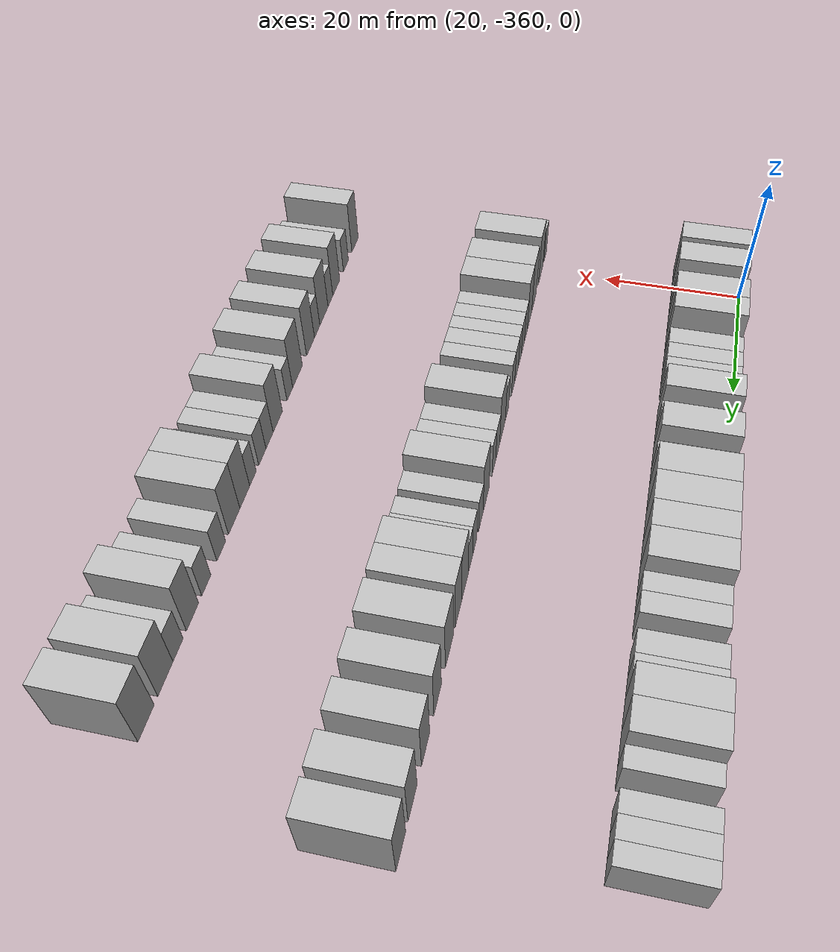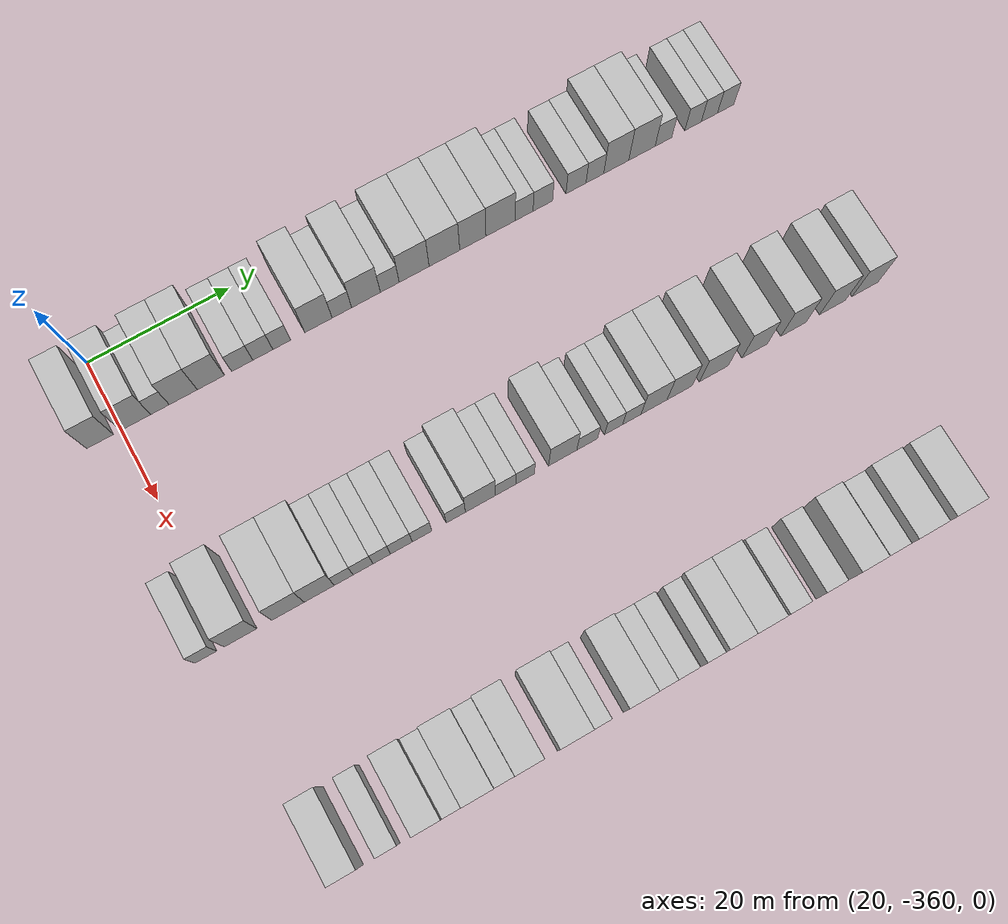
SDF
<sdf version="1.6">
 <world name="default">
  <model name="building_25">
   <static>1</static>
   <pose>25.0000 -362.9163 0 0.000000 0.000000 0.000000</pose>
   <link name="link">
    <pose>0 0 4.50 0 0 0</pose>
    <collision name="collision"><geometry><box><size>10.0000 3.6502 9.0000</size></box></geometry></collision>
    <visual name="visual">
     <cast_shadows>0</cast_shadows>
     <geometry><box><size>10.0000 3.6502 9.0000</size></box></geometry>
     <material>
      <script>
       <uri>model://HANNAS_wall/materials/scripts</uri>
       <uri>model://HANNAS_wall/materials/textures</uri>
       <name>vrc/HANNAS_wall</name>
      </script>
     </material>
    </visual>
   </link>
  </model>
  <model name="building_26">
   <static>1</static>
   <pose>25.0000 -358.0158 0 0.000000 0.000000 0.000000</pose>
   <link name="link">
    <pose>0 0 4.50 0 0 0</pose>
    <collision name="collision"><geometry><box><size>10.0000 4.1508 9.0000</size></box></geometry></collision>
    <visual name="visual">
     <cast_shadows>0</cast_shadows>
     <geometry><box><size>10.0000 4.1508 9.0000</size></box></geometry>
     <material>
      <script>
       <uri>model://HANNAS_wall/materials/scripts</uri>
       <uri>model://HANNAS_wall/materials/textures</uri>
       <name>vrc/HANNAS_wall</name>
      </script>
     </material>
    </visual>
   </link>
  </model>
  <model name="building_27">
   <static>1</static>
   <pose>25.0000 -354.6741 0 0.000000 0.000000 0.000000</pose>
   <link name="link">
    <pose>0 0 3.00 0 0 0</pose>
    <collision name="collision"><geometry><box><size>10.0000 2.5326 6.0000</size></box></geometry></collision>
    <visual name="visual">
     <cast_shadows>0</cast_shadows>
     <geometry><box><size>10.0000 2.5326 6.0000</size></box></geometry>
     <material>
      <script>
       <uri>model://HANNAS_wall/materials/scripts</uri>
       <uri>model://HANNAS_wall/materials/textures</uri>
       <name>vrc/HANNAS_wall</name>
      </script>
     </material>
    </visual>
   </link>
  </model>
  <model name="building_28">
   <static>1</static>
   <pose>25.0000 -351.4615 0 0.000000 0.000000 0.000000</pose>
   <link name="link">
    <pose>0 0 4.50 0 0 0</pose>
    <collision name="collision"><geometry><box><size>10.0000 3.8926 9.0000</size></box></geometry></collision>
    <visual name="visual">
     <cast_shadows>0</cast_shadows>
     <geometry><box><size>10.0000 3.8926 9.0000</size></box></geometry>
     <material>
      <script>
       <uri>model://HANNAS_wall/materials/scripts</uri>
       <uri>model://HANNAS_wall/materials/textures</uri>
       <name>vrc/HANNAS_wall</name>
      </script>
     </material>
    </visual>
   </link>
  </model>
  <model name="building_29">
   <static>1</static>
   <pose>25.0000 -347.6250 0 0.000000 0.000000 0.000000</pose>
   <link name="link">
    <pose>0 0 4.50 0 0 0</pose>
    <collision name="collision"><geometry><box><size>10.0000 3.7804 9.0000</size></box></geometry></collision>
    <visual name="visual">
     <cast_shadows>0</cast_shadows>
     <geometry><box><size>10.0000 3.7804 9.0000</size></box></geometry>
     <material>
      <script>
       <uri>model://HANNAS_wall/materials/scripts</uri>
       <uri>model://HANNAS_wall/materials/textures</uri>
       <name>vrc/HANNAS_wall</name>
      </script>
     </material>
    </visual>
   </link>
  </model>
  <model name="building_30">
   <static>1</static>
   <pose>25.0000 -343.2456 0 0.000000 0.000000 0.000000</pose>
   <link name="link">
    <pose>0 0 3.00 0 0 0</pose>
    <collision name="collision"><geometry><box><size>10.0000 2.9784 6.0000</size></box></geometry></collision>
    <visual name="visual">
     <cast_shadows>0</cast_shadows>
     <geometry><box><size>10.0000 2.9784 6.0000</size></box></geometry>
     <material>
      <script>
       <uri>model://HANNAS_wall/materials/scripts</uri>
       <uri>model://HANNAS_wall/materials/textures</uri>
       <name>vrc/HANNAS_wall</name>
      </script>
     </material>
    </visual>
   </link>
  </model>
  <model name="building_31">
   <static>1</static>
   <pose>25.0000 -340.3526 0 0.000000 0.000000 0.000000</pose>
   <link name="link">
    <pose>0 0 3.00 0 0 0</pose>
    <collision name="collision"><geometry><box><size>10.0000 2.8076 6.0000</size></box></geometry></collision>
    <visual name="visual">
     <cast_shadows>0</cast_shadows>
     <geometry><box><size>10.0000 2.8076 6.0000</size></box></geometry>
     <material>
      <script>
       <uri>model://HANNAS_wall/materials/scripts</uri>
       <uri>model://HANNAS_wall/materials/textures</uri>
       <name>vrc/HANNAS_wall</name>
      </script>
     </material>
    </visual>
   </link>
  </model>
  <model name="building_32">
   <static>1</static>
   <pose>25.0000 -337.6919 0 0.000000 0.000000 0.000000</pose>
   <link name="link">
    <pose>0 0 3.00 0 0 0</pose>
    <collision name="collision"><geometry><box><size>10.0000 2.5138 6.0000</size></box></geometry></collision>
    <visual name="visual">
     <cast_shadows>0</cast_shadows>
     <geometry><box><size>10.0000 2.5138 6.0000</size></box></geometry>
     <material>
      <script>
       <uri>model://HANNAS_wall/materials/scripts</uri>
       <uri>model://HANNAS_wall/materials/textures</uri>
       <name>vrc/HANNAS_wall</name>
      </script>
     </material>
    </visual>
   </link>
  </model>
  <model name="building_33">
   <static>1</static>
   <pose>25.0000 -332.4795 0 0.000000 0.000000 0.000000</pose>
   <link name="link">
    <pose>0 0 4.50 0 0 0</pose>
    <collision name="collision"><geometry><box><size>10.0000 3.9111 9.0000</size></box></geometry></collision>
    <visual name="visual">
     <cast_shadows>0</cast_shadows>
     <geometry><box><size>10.0000 3.9111 9.0000</size></box></geometry>
     <material>
      <script>
       <uri>model://HANNAS_wall/materials/scripts</uri>
       <uri>model://HANNAS_wall/materials/textures</uri>
       <name>vrc/HANNAS_wall</name>
      </script>
     </material>
    </visual>
   </link>
  </model>
  <model name="building_34">
   <static>1</static>
   <pose>25.0000 -329.1328 0 0.000000 0.000000 0.000000</pose>
   <link name="link">
    <pose>0 0 3.00 0 0 0</pose>
    <collision name="collision"><geometry><box><size>10.0000 2.7823 6.0000</size></box></geometry></collision>
    <visual name="visual">
     <cast_shadows>0</cast_shadows>
     <geometry><box><size>10.0000 2.7823 6.0000</size></box></geometry>
     <material>
      <script>
       <uri>model://HANNAS_wall/materials/scripts</uri>
       <uri>model://HANNAS_wall/materials/textures</uri>
       <name>vrc/HANNAS_wall</name>
      </script>
     </material>
    </visual>
   </link>
  </model>
  <model name="building_35">
   <static>1</static>
   <pose>25.0000 -325.6874 0 0.000000 0.000000 0.000000</pose>
   <link name="link">
    <pose>0 0 4.50 0 0 0</pose>
    <collision name="collision"><geometry><box><size>10.0000 4.1084 9.0000</size></box></geometry></collision>
    <visual name="visual">
     <cast_shadows>0</cast_shadows>
     <geometry><box><size>10.0000 4.1084 9.0000</size></box></geometry>
     <material>
      <script>
       <uri>model://HANNAS_wall/materials/scripts</uri>
       <uri>model://HANNAS_wall/materials/textures</uri>
       <name>vrc/HANNAS_wall</name>
      </script>
     </material>
    </visual>
   </link>
  </model>
  <model name="building_36">
   <static>1</static>
   <pose>25.0000 -322.2749 0 0.000000 0.000000 0.000000</pose>
   <link name="link">
    <pose>0 0 3.00 0 0 0</pose>
    <collision name="collision"><geometry><box><size>10.0000 2.7166 6.0000</size></box></geometry></collision>
    <visual name="visual">
     <cast_shadows>0</cast_shadows>
     <geometry><box><size>10.0000 2.7166 6.0000</size></box></geometry>
     <material>
      <script>
       <uri>model://HANNAS_wall/materials/scripts</uri>
       <uri>model://HANNAS_wall/materials/textures</uri>
       <name>vrc/HANNAS_wall</name>
      </script>
     </material>
    </visual>
   </link>
  </model>
  <model name="building_37">
   <static>1</static>
   <pose>25.0000 -318.7451 0 0.000000 0.000000 0.000000</pose>
   <link name="link">
    <pose>0 0 4.50 0 0 0</pose>
    <collision name="collision"><geometry><box><size>10.0000 4.3431 9.0000</size></box></geometry></collision>
    <visual name="visual">
     <cast_shadows>0</cast_shadows>
     <geometry><box><size>10.0000 4.3431 9.0000</size></box></geometry>
     <material>
      <script>
       <uri>model://HANNAS_wall/materials/scripts</uri>
       <uri>model://HANNAS_wall/materials/textures</uri>
       <name>vrc/HANNAS_wall</name>
      </script>
     </material>
    </visual>
   </link>
  </model>
  <model name="building_38">
   <static>1</static>
   <pose>25.0000 -314.3422 0 0.000000 0.000000 0.000000</pose>
   <link name="link">
    <pose>0 0 4.50 0 0 0</pose>
    <collision name="collision"><geometry><box><size>10.0000 4.4626 9.0000</size></box></geometry></collision>
    <visual name="visual">
     <cast_shadows>0</cast_shadows>
     <geometry><box><size>10.0000 4.4626 9.0000</size></box></geometry>
     <material>
      <script>
       <uri>model://HANNAS_wall/materials/scripts</uri>
       <uri>model://HANNAS_wall/materials/textures</uri>
       <name>vrc/HANNAS_wall</name>
      </script>
     </material>
    </visual>
   </link>
  </model>
  <model name="building_39">
   <static>1</static>
   <pose>25.0000 -310.1958 0 0.000000 0.000000 0.000000</pose>
   <link name="link">
    <pose>0 0 4.50 0 0 0</pose>
    <collision name="collision"><geometry><box><size>10.0000 3.8304 9.0000</size></box></geometry></collision>
    <visual name="visual">
     <cast_shadows>0</cast_shadows>
     <geometry><box><size>10.0000 3.8304 9.0000</size></box></geometry>
     <material>
      <script>
       <uri>model://HANNAS_wall/materials/scripts</uri>
       <uri>model://HANNAS_wall/materials/textures</uri>
       <name>vrc/HANNAS_wall</name>
      </script>
     </material>
    </visual>
   </link>
  </model>
  <model name="building_40">
   <static>1</static>
   <pose>25.0000 -306.1261 0 0.000000 0.000000 0.000000</pose>
   <link name="link">
    <pose>0 0 4.50 0 0 0</pose>
    <collision name="collision"><geometry><box><size>10.0000 4.3090 9.0000</size></box></geometry></collision>
    <visual name="visual">
     <cast_shadows>0</cast_shadows>
     <geometry><box><size>10.0000 4.3090 9.0000</size></box></geometry>
     <material>
      <script>
       <uri>model://HANNAS_wall/materials/scripts</uri>
       <uri>model://HANNAS_wall/materials/textures</uri>
       <name>vrc/HANNAS_wall</name>
      </script>
     </material>
    </visual>
   </link>
  </model>
  <model name="building_41">
   <static>1</static>
   <pose>25.0000 -302.6480 0 0.000000 0.000000 0.000000</pose>
   <link name="link">
    <pose>0 0 3.00 0 0 0</pose>
    <collision name="collision"><geometry><box><size>10.0000 2.6471 6.0000</size></box></geometry></collision>
    <visual name="visual">
     <cast_shadows>0</cast_shadows>
     <geometry><box><size>10.0000 2.6471 6.0000</size></box></geometry>
     <material>
      <script>
       <uri>model://HANNAS_wall/materials/scripts</uri>
       <uri>model://HANNAS_wall/materials/textures</uri>
       <name>vrc/HANNAS_wall</name>
      </script>
     </material>
    </visual>
   </link>
  </model>
  <model name="building_42">
   <static>1</static>
   <pose>25.0000 -299.8721 0 0.000000 0.000000 0.000000</pose>
   <link name="link">
    <pose>0 0 3.00 0 0 0</pose>
    <collision name="collision"><geometry><box><size>10.0000 2.9047 6.0000</size></box></geometry></collision>
    <visual name="visual">
     <cast_shadows>0</cast_shadows>
     <geometry><box><size>10.0000 2.9047 6.0000</size></box></geometry>
     <material>
      <script>
       <uri>model://HANNAS_wall/materials/scripts</uri>
       <uri>model://HANNAS_wall/materials/textures</uri>
       <name>vrc/HANNAS_wall</name>
      </script>
     </material>
    </visual>
   </link>
  </model>
  <model name="building_43">
   <static>1</static>
   <pose>25.0000 -294.9206 0 0.000000 0.000000 0.000000</pose>
   <link name="link">
    <pose>0 0 3.00 0 0 0</pose>
    <collision name="collision"><geometry><box><size>10.0000 2.9984 6.0000</size></box></geometry></collision>
    <visual name="visual">
     <cast_shadows>0</cast_shadows>
     <geometry><box><size>10.0000 2.9984 6.0000</size></box></geometry>
     <material>
      <script>
       <uri>model://HANNAS_wall/materials/scripts</uri>
       <uri>model://HANNAS_wall/materials/textures</uri>
       <name>vrc/HANNAS_wall</name>
      </script>
     </material>
    </visual>
   </link>
  </model>
  <model name="building_44">
   <static>1</static>
   <pose>25.0000 -292.0987 0 0.000000 0.000000 0.000000</pose>
   <link name="link">
    <pose>0 0 3.00 0 0 0</pose>
    <collision name="collision"><geometry><box><size>10.0000 2.6453 6.0000</size></box></geometry></collision>
    <visual name="visual">
     <cast_shadows>0</cast_shadows>
     <geometry><box><size>10.0000 2.6453 6.0000</size></box></geometry>
     <material>
      <script>
       <uri>model://HANNAS_wall/materials/scripts</uri>
       <uri>model://HANNAS_wall/materials/textures</uri>
       <name>vrc/HANNAS_wall</name>
      </script>
     </material>
    </visual>
   </link>
  </model>
  <model name="building_45">
   <static>1</static>
   <pose>25.0000 -288.8774 0 0.000000 0.000000 0.000000</pose>
   <link name="link">
    <pose>0 0 4.50 0 0 0</pose>
    <collision name="collision"><geometry><box><size>10.0000 3.7974 9.0000</size></box></geometry></collision>
    <visual name="visual">
     <cast_shadows>0</cast_shadows>
     <geometry><box><size>10.0000 3.7974 9.0000</size></box></geometry>
     <material>
      <script>
       <uri>model://HANNAS_wall/materials/scripts</uri>
       <uri>model://HANNAS_wall/materials/textures</uri>
       <name>vrc/HANNAS_wall</name>
      </script>
     </material>
    </visual>
   </link>
  </model>
  <model name="building_46">
   <static>1</static>
   <pose>25.0000 -284.9828 0 0.000000 0.000000 0.000000</pose>
   <link name="link">
    <pose>0 0 4.50 0 0 0</pose>
    <collision name="collision"><geometry><box><size>10.0000 3.9919 9.0000</size></box></geometry></collision>
    <visual name="visual">
     <cast_shadows>0</cast_shadows>
     <geometry><box><size>10.0000 3.9919 9.0000</size></box></geometry>
     <material>
      <script>
       <uri>model://HANNAS_wall/materials/scripts</uri>
       <uri>model://HANNAS_wall/materials/textures</uri>
       <name>vrc/HANNAS_wall</name>
      </script>
     </material>
    </visual>
   </link>
  </model>
  <model name="building_47">
   <static>1</static>
   <pose>25.0000 -281.7192 0 0.000000 0.000000 0.000000</pose>
   <link name="link">
    <pose>0 0 3.00 0 0 0</pose>
    <collision name="collision"><geometry><box><size>10.0000 2.5353 6.0000</size></box></geometry></collision>
    <visual name="visual">
     <cast_shadows>0</cast_shadows>
     <geometry><box><size>10.0000 2.5353 6.0000</size></box></geometry>
     <material>
      <script>
       <uri>model://HANNAS_wall/materials/scripts</uri>
       <uri>model://HANNAS_wall/materials/textures</uri>
       <name>vrc/HANNAS_wall</name>
      </script>
     </material>
    </visual>
   </link>
  </model>
  <model name="building_48">
   <static>1</static>
   <pose>25.0000 -277.1968 0 0.000000 0.000000 0.000000</pose>
   <link name="link">
    <pose>0 0 3.00 0 0 0</pose>
    <collision name="collision"><geometry><box><size>10.0000 2.5094 6.0000</size></box></geometry></collision>
    <visual name="visual">
     <cast_shadows>0</cast_shadows>
     <geometry><box><size>10.0000 2.5094 6.0000</size></box></geometry>
     <material>
      <script>
       <uri>model://HANNAS_wall/materials/scripts</uri>
       <uri>model://HANNAS_wall/materials/textures</uri>
       <name>vrc/HANNAS_wall</name>
      </script>
     </material>
    </visual>
   </link>
  </model>
  <model name="building_49">
   <static>1</static>
   <pose>25.0000 -274.6960 0 0.000000 0.000000 0.000000</pose>
   <link name="link">
    <pose>0 0 3.00 0 0 0</pose>
    <collision name="collision"><geometry><box><size>10.0000 2.4923 6.0000</size></box></geometry></collision>
    <visual name="visual">
     <cast_shadows>0</cast_shadows>
     <geometry><box><size>10.0000 2.4923 6.0000</size></box></geometry>
     <material>
      <script>
       <uri>model://HANNAS_wall/materials/scripts</uri>
       <uri>model://HANNAS_wall/materials/textures</uri>
       <name>vrc/HANNAS_wall</name>
      </script>
     </material>
    </visual>
   </link>
  </model>
  <model name="building_50">
   <static>1</static>
   <pose>25.0000 -272.1883 0 0.000000 0.000000 0.000000</pose>
   <link name="link">
    <pose>0 0 3.00 0 0 0</pose>
    <collision name="collision"><geometry><box><size>10.0000 2.5231 6.0000</size></box></geometry></collision>
    <visual name="visual">
     <cast_shadows>0</cast_shadows>
     <geometry><box><size>10.0000 2.5231 6.0000</size></box></geometry>
     <material>
      <script>
       <uri>model://HANNAS_wall/materials/scripts</uri>
       <uri>model://HANNAS_wall/materials/textures</uri>
       <name>vrc/HANNAS_wall</name>
      </script>
     </material>
    </visual>
   </link>
  </model>
  <model name="building_254">
   <static>1</static>
   <pose>55.0000 -363.3795 0 0.000000 0.000000 0.000000</pose>
   <link name="link">
    <pose>0 0 3.00 0 0 0</pose>
    <collision name="collision"><geometry><box><size>10.0000 2.8930 6.0000</size></box></geometry></collision>
    <visual name="visual">
     <cast_shadows>0</cast_shadows>
     <geometry><box><size>10.0000 2.8930 6.0000</size></box></geometry>
     <material>
      <script>
       <uri>model://HANNAS_wall/materials/scripts</uri>
       <uri>model://HANNAS_wall/materials/textures</uri>
       <name>vrc/HANNAS_wall</name>
      </script>
     </material>
    </visual>
   </link>
  </model>
  <model name="building_255">
   <static>1</static>
   <pose>55.0000 -358.7489 0 0.000000 0.000000 0.000000</pose>
   <link name="link">
    <pose>0 0 4.50 0 0 0</pose>
    <collision name="collision"><geometry><box><size>10.0000 4.3682 9.0000</size></box></geometry></collision>
    <visual name="visual">
     <cast_shadows>0</cast_shadows>
     <geometry><box><size>10.0000 4.3682 9.0000</size></box></geometry>
     <material>
      <script>
       <uri>model://HANNAS_wall/materials/scripts</uri>
       <uri>model://HANNAS_wall/materials/textures</uri>
       <name>vrc/HANNAS_wall</name>
      </script>
     </material>
    </visual>
   </link>
  </model>
  <model name="building_256">
   <static>1</static>
   <pose>55.0000 -352.3789 0 0.000000 0.000000 0.000000</pose>
   <link name="link">
    <pose>0 0 4.50 0 0 0</pose>
    <collision name="collision"><geometry><box><size>10.0000 4.3719 9.0000</size></box></geometry></collision>
    <visual name="visual">
     <cast_shadows>0</cast_shadows>
     <geometry><box><size>10.0000 4.3719 9.0000</size></box></geometry>
     <material>
      <script>
       <uri>model://HANNAS_wall/materials/scripts</uri>
       <uri>model://HANNAS_wall/materials/textures</uri>
       <name>vrc/HANNAS_wall</name>
      </script>
     </material>
    </visual>
   </link>
  </model>
  <model name="building_257">
   <static>1</static>
   <pose>55.0000 -348.1459 0 0.000000 0.000000 0.000000</pose>
   <link name="link">
    <pose>0 0 4.50 0 0 0</pose>
    <collision name="collision"><geometry><box><size>10.0000 4.0941 9.0000</size></box></geometry></collision>
    <visual name="visual">
     <cast_shadows>0</cast_shadows>
     <geometry><box><size>10.0000 4.0941 9.0000</size></box></geometry>
     <material>
      <script>
       <uri>model://HANNAS_wall/materials/scripts</uri>
       <uri>model://HANNAS_wall/materials/textures</uri>
       <name>vrc/HANNAS_wall</name>
      </script>
     </material>
    </visual>
   </link>
  </model>
  <model name="building_258">
   <static>1</static>
   <pose>55.0000 -344.8198 0 0.000000 0.000000 0.000000</pose>
   <link name="link">
    <pose>0 0 3.00 0 0 0</pose>
    <collision name="collision"><geometry><box><size>10.0000 2.5580 6.0000</size></box></geometry></collision>
    <visual name="visual">
     <cast_shadows>0</cast_shadows>
     <geometry><box><size>10.0000 2.5580 6.0000</size></box></geometry>
     <material>
      <script>
       <uri>model://HANNAS_wall/materials/scripts</uri>
       <uri>model://HANNAS_wall/materials/textures</uri>
       <name>vrc/HANNAS_wall</name>
      </script>
     </material>
    </visual>
   </link>
  </model>
  <model name="building_259">
   <static>1</static>
   <pose>55.0000 -342.1855 0 0.000000 0.000000 0.000000</pose>
   <link name="link">
    <pose>0 0 3.00 0 0 0</pose>
    <collision name="collision"><geometry><box><size>10.0000 2.7106 6.0000</size></box></geometry></collision>
    <visual name="visual">
     <cast_shadows>0</cast_shadows>
     <geometry><box><size>10.0000 2.7106 6.0000</size></box></geometry>
     <material>
      <script>
       <uri>model://HANNAS_wall/materials/scripts</uri>
       <uri>model://HANNAS_wall/materials/textures</uri>
       <name>vrc/HANNAS_wall</name>
      </script>
     </material>
    </visual>
   </link>
  </model>
  <model name="building_260">
   <static>1</static>
   <pose>55.0000 -339.6256 0 0.000000 0.000000 0.000000</pose>
   <link name="link">
    <pose>0 0 3.00 0 0 0</pose>
    <collision name="collision"><geometry><box><size>10.0000 2.4093 6.0000</size></box></geometry></collision>
    <visual name="visual">
     <cast_shadows>0</cast_shadows>
     <geometry><box><size>10.0000 2.4093 6.0000</size></box></geometry>
     <material>
      <script>
       <uri>model://HANNAS_wall/materials/scripts</uri>
       <uri>model://HANNAS_wall/materials/textures</uri>
       <name>vrc/HANNAS_wall</name>
      </script>
     </material>
    </visual>
   </link>
  </model>
  <model name="building_261">
   <static>1</static>
   <pose>55.0000 -336.9314 0 0.000000 0.000000 0.000000</pose>
   <link name="link">
    <pose>0 0 3.00 0 0 0</pose>
    <collision name="collision"><geometry><box><size>10.0000 2.9791 6.0000</size></box></geometry></collision>
    <visual name="visual">
     <cast_shadows>0</cast_shadows>
     <geometry><box><size>10.0000 2.9791 6.0000</size></box></geometry>
     <material>
      <script>
       <uri>model://HANNAS_wall/materials/scripts</uri>
       <uri>model://HANNAS_wall/materials/textures</uri>
       <name>vrc/HANNAS_wall</name>
      </script>
     </material>
    </visual>
   </link>
  </model>
  <model name="building_262">
   <static>1</static>
   <pose>55.0000 -334.0893 0 0.000000 0.000000 0.000000</pose>
   <link name="link">
    <pose>0 0 3.00 0 0 0</pose>
    <collision name="collision"><geometry><box><size>10.0000 2.7050 6.0000</size></box></geometry></collision>
    <visual name="visual">
     <cast_shadows>0</cast_shadows>
     <geometry><box><size>10.0000 2.7050 6.0000</size></box></geometry>
     <material>
      <script>
       <uri>model://HANNAS_wall/materials/scripts</uri>
       <uri>model://HANNAS_wall/materials/textures</uri>
       <name>vrc/HANNAS_wall</name>
      </script>
     </material>
    </visual>
   </link>
  </model>
  <model name="building_263">
   <static>1</static>
   <pose>55.0000 -329.4007 0 0.000000 0.000000 0.000000</pose>
   <link name="link">
    <pose>0 0 3.00 0 0 0</pose>
    <collision name="collision"><geometry><box><size>10.0000 2.6723 6.0000</size></box></geometry></collision>
    <visual name="visual">
     <cast_shadows>0</cast_shadows>
     <geometry><box><size>10.0000 2.6723 6.0000</size></box></geometry>
     <material>
      <script>
       <uri>model://HANNAS_wall/materials/scripts</uri>
       <uri>model://HANNAS_wall/materials/textures</uri>
       <name>vrc/HANNAS_wall</name>
      </script>
     </material>
    </visual>
   </link>
  </model>
  <model name="building_264">
   <static>1</static>
   <pose>55.0000 -325.9668 0 0.000000 0.000000 0.000000</pose>
   <link name="link">
    <pose>0 0 4.50 0 0 0</pose>
    <collision name="collision"><geometry><box><size>10.0000 4.1955 9.0000</size></box></geometry></collision>
    <visual name="visual">
     <cast_shadows>0</cast_shadows>
     <geometry><box><size>10.0000 4.1955 9.0000</size></box></geometry>
     <material>
      <script>
       <uri>model://HANNAS_wall/materials/scripts</uri>
       <uri>model://HANNAS_wall/materials/textures</uri>
       <name>vrc/HANNAS_wall</name>
      </script>
     </material>
    </visual>
   </link>
  </model>
  <model name="building_265">
   <static>1</static>
   <pose>55.0000 -322.4486 0 0.000000 0.000000 0.000000</pose>
   <link name="link">
    <pose>0 0 3.00 0 0 0</pose>
    <collision name="collision"><geometry><box><size>10.0000 2.8410 6.0000</size></box></geometry></collision>
    <visual name="visual">
     <cast_shadows>0</cast_shadows>
     <geometry><box><size>10.0000 2.8410 6.0000</size></box></geometry>
     <material>
      <script>
       <uri>model://HANNAS_wall/materials/scripts</uri>
       <uri>model://HANNAS_wall/materials/textures</uri>
       <name>vrc/HANNAS_wall</name>
      </script>
     </material>
    </visual>
   </link>
  </model>
  <model name="building_266">
   <static>1</static>
   <pose>55.0000 -319.7094 0 0.000000 0.000000 0.000000</pose>
   <link name="link">
    <pose>0 0 3.00 0 0 0</pose>
    <collision name="collision"><geometry><box><size>10.0000 2.6372 6.0000</size></box></geometry></collision>
    <visual name="visual">
     <cast_shadows>0</cast_shadows>
     <geometry><box><size>10.0000 2.6372 6.0000</size></box></geometry>
     <material>
      <script>
       <uri>model://HANNAS_wall/materials/scripts</uri>
       <uri>model://HANNAS_wall/materials/textures</uri>
       <name>vrc/HANNAS_wall</name>
      </script>
     </material>
    </visual>
   </link>
  </model>
  <model name="building_267">
   <static>1</static>
   <pose>55.0000 -314.3825 0 0.000000 0.000000 0.000000</pose>
   <link name="link">
    <pose>0 0 4.50 0 0 0</pose>
    <collision name="collision"><geometry><box><size>10.0000 4.0167 9.0000</size></box></geometry></collision>
    <visual name="visual">
     <cast_shadows>0</cast_shadows>
     <geometry><box><size>10.0000 4.0167 9.0000</size></box></geometry>
     <material>
      <script>
       <uri>model://HANNAS_wall/materials/scripts</uri>
       <uri>model://HANNAS_wall/materials/textures</uri>
       <name>vrc/HANNAS_wall</name>
      </script>
     </material>
    </visual>
   </link>
  </model>
  <model name="building_268">
   <static>1</static>
   <pose>55.0000 -310.8898 0 0.000000 0.000000 0.000000</pose>
   <link name="link">
    <pose>0 0 3.00 0 0 0</pose>
    <collision name="collision"><geometry><box><size>10.0000 2.9686 6.0000</size></box></geometry></collision>
    <visual name="visual">
     <cast_shadows>0</cast_shadows>
     <geometry><box><size>10.0000 2.9686 6.0000</size></box></geometry>
     <material>
      <script>
       <uri>model://HANNAS_wall/materials/scripts</uri>
       <uri>model://HANNAS_wall/materials/textures</uri>
       <name>vrc/HANNAS_wall</name>
      </script>
     </material>
    </visual>
   </link>
  </model>
  <model name="building_269">
   <static>1</static>
   <pose>55.0000 -307.1043 0 0.000000 0.000000 0.000000</pose>
   <link name="link">
    <pose>0 0 3.00 0 0 0</pose>
    <collision name="collision"><geometry><box><size>10.0000 2.6023 6.0000</size></box></geometry></collision>
    <visual name="visual">
     <cast_shadows>0</cast_shadows>
     <geometry><box><size>10.0000 2.6023 6.0000</size></box></geometry>
     <material>
      <script>
       <uri>model://HANNAS_wall/materials/scripts</uri>
       <uri>model://HANNAS_wall/materials/textures</uri>
       <name>vrc/HANNAS_wall</name>
      </script>
     </material>
    </visual>
   </link>
  </model>
  <model name="building_270">
   <static>1</static>
   <pose>55.0000 -304.4788 0 0.000000 0.000000 0.000000</pose>
   <link name="link">
    <pose>0 0 3.00 0 0 0</pose>
    <collision name="collision"><geometry><box><size>10.0000 2.6488 6.0000</size></box></geometry></collision>
    <visual name="visual">
     <cast_shadows>0</cast_shadows>
     <geometry><box><size>10.0000 2.6488 6.0000</size></box></geometry>
     <material>
      <script>
       <uri>model://HANNAS_wall/materials/scripts</uri>
       <uri>model://HANNAS_wall/materials/textures</uri>
       <name>vrc/HANNAS_wall</name>
      </script>
     </material>
    </visual>
   </link>
  </model>
  <model name="building_271">
   <static>1</static>
   <pose>55.0000 -301.2688 0 0.000000 0.000000 0.000000</pose>
   <link name="link">
    <pose>0 0 4.50 0 0 0</pose>
    <collision name="collision"><geometry><box><size>10.0000 3.7713 9.0000</size></box></geometry></collision>
    <visual name="visual">
     <cast_shadows>0</cast_shadows>
     <geometry><box><size>10.0000 3.7713 9.0000</size></box></geometry>
     <material>
      <script>
       <uri>model://HANNAS_wall/materials/scripts</uri>
       <uri>model://HANNAS_wall/materials/textures</uri>
       <name>vrc/HANNAS_wall</name>
      </script>
     </material>
    </visual>
   </link>
  </model>
  <model name="building_272">
   <static>1</static>
   <pose>55.0000 -297.5257 0 0.000000 0.000000 0.000000</pose>
   <link name="link">
    <pose>0 0 4.50 0 0 0</pose>
    <collision name="collision"><geometry><box><size>10.0000 3.7149 9.0000</size></box></geometry></collision>
    <visual name="visual">
     <cast_shadows>0</cast_shadows>
     <geometry><box><size>10.0000 3.7149 9.0000</size></box></geometry>
     <material>
      <script>
       <uri>model://HANNAS_wall/materials/scripts</uri>
       <uri>model://HANNAS_wall/materials/textures</uri>
       <name>vrc/HANNAS_wall</name>
      </script>
     </material>
    </visual>
   </link>
  </model>
  <model name="building_273">
   <static>1</static>
   <pose>55.0000 -292.5268 0 0.000000 0.000000 0.000000</pose>
   <link name="link">
    <pose>0 0 4.50 0 0 0</pose>
    <collision name="collision"><geometry><box><size>10.0000 4.2829 9.0000</size></box></geometry></collision>
    <visual name="visual">
     <cast_shadows>0</cast_shadows>
     <geometry><box><size>10.0000 4.2829 9.0000</size></box></geometry>
     <material>
      <script>
       <uri>model://HANNAS_wall/materials/scripts</uri>
       <uri>model://HANNAS_wall/materials/textures</uri>
       <name>vrc/HANNAS_wall</name>
      </script>
     </material>
    </visual>
   </link>
  </model>
  <model name="building_274">
   <static>1</static>
   <pose>55.0000 -286.5112 0 0.000000 0.000000 0.000000</pose>
   <link name="link">
    <pose>0 0 4.50 0 0 0</pose>
    <collision name="collision"><geometry><box><size>10.0000 3.7482 9.0000</size></box></geometry></collision>
    <visual name="visual">
     <cast_shadows>0</cast_shadows>
     <geometry><box><size>10.0000 3.7482 9.0000</size></box></geometry>
     <material>
      <script>
       <uri>model://HANNAS_wall/materials/scripts</uri>
       <uri>model://HANNAS_wall/materials/textures</uri>
       <name>vrc/HANNAS_wall</name>
      </script>
     </material>
    </visual>
   </link>
  </model>
  <model name="building_275">
   <static>1</static>
   <pose>55.0000 -280.7493 0 0.000000 0.000000 0.000000</pose>
   <link name="link">
    <pose>0 0 4.50 0 0 0</pose>
    <collision name="collision"><geometry><box><size>10.0000 3.7756 9.0000</size></box></geometry></collision>
    <visual name="visual">
     <cast_shadows>0</cast_shadows>
     <geometry><box><size>10.0000 3.7756 9.0000</size></box></geometry>
     <material>
      <script>
       <uri>model://HANNAS_wall/materials/scripts</uri>
       <uri>model://HANNAS_wall/materials/textures</uri>
       <name>vrc/HANNAS_wall</name>
      </script>
     </material>
    </visual>
   </link>
  </model>
  <model name="building_276">
   <static>1</static>
   <pose>55.0000 -274.9113 0 0.000000 0.000000 0.000000</pose>
   <link name="link">
    <pose>0 0 4.50 0 0 0</pose>
    <collision name="collision"><geometry><box><size>10.0000 3.9003 9.0000</size></box></geometry></collision>
    <visual name="visual">
     <cast_shadows>0</cast_shadows>
     <geometry><box><size>10.0000 3.9003 9.0000</size></box></geometry>
     <material>
      <script>
       <uri>model://HANNAS_wall/materials/scripts</uri>
       <uri>model://HANNAS_wall/materials/textures</uri>
       <name>vrc/HANNAS_wall</name>
      </script>
     </material>
    </visual>
   </link>
  </model>
  <model name="building_277">
   <static>1</static>
   <pose>55.0000 -269.9870 0 0.000000 0.000000 0.000000</pose>
   <link name="link">
    <pose>0 0 4.50 0 0 0</pose>
    <collision name="collision"><geometry><box><size>10.0000 3.9483 9.0000</size></box></geometry></collision>
    <visual name="visual">
     <cast_shadows>0</cast_shadows>
     <geometry><box><size>10.0000 3.9483 9.0000</size></box></geometry>
     <material>
      <script>
       <uri>model://HANNAS_wall/materials/scripts</uri>
       <uri>model://HANNAS_wall/materials/textures</uri>
       <name>vrc/HANNAS_wall</name>
      </script>
     </material>
    </visual>
   </link>
  </model>
  <model name="building_486">
   <static>1</static>
   <pose>85.0000 -360.0698 0 0.000000 0.000000 0.000000</pose>
   <link name="link">
    <pose>0 0 4.50 0 0 0</pose>
    <collision name="collision"><geometry><box><size>10.0000 3.7057 9.0000</size></box></geometry></collision>
    <visual name="visual">
     <cast_shadows>0</cast_shadows>
     <geometry><box><size>10.0000 3.7057 9.0000</size></box></geometry>
     <material>
      <script>
       <uri>model://HANNAS_wall/materials/scripts</uri>
       <uri>model://HANNAS_wall/materials/textures</uri>
       <name>vrc/HANNAS_wall</name>
      </script>
     </material>
    </visual>
   </link>
  </model>
  <model name="building_487">
   <static>1</static>
   <pose>85.0000 -354.8218 0 0.000000 0.000000 0.000000</pose>
   <link name="link">
    <pose>0 0 3.00 0 0 0</pose>
    <collision name="collision"><geometry><box><size>10.0000 2.7902 6.0000</size></box></geometry></collision>
    <visual name="visual">
     <cast_shadows>0</cast_shadows>
     <geometry><box><size>10.0000 2.7902 6.0000</size></box></geometry>
     <material>
      <script>
       <uri>model://HANNAS_wall/materials/scripts</uri>
       <uri>model://HANNAS_wall/materials/textures</uri>
       <name>vrc/HANNAS_wall</name>
      </script>
     </material>
    </visual>
   </link>
  </model>
  <model name="building_488">
   <static>1</static>
   <pose>85.0000 -349.5634 0 0.000000 0.000000 0.000000</pose>
   <link name="link">
    <pose>0 0 4.50 0 0 0</pose>
    <collision name="collision"><geometry><box><size>10.0000 3.7267 9.0000</size></box></geometry></collision>
    <visual name="visual">
     <cast_shadows>0</cast_shadows>
     <geometry><box><size>10.0000 3.7267 9.0000</size></box></geometry>
     <material>
      <script>
       <uri>model://HANNAS_wall/materials/scripts</uri>
       <uri>model://HANNAS_wall/materials/textures</uri>
       <name>vrc/HANNAS_wall</name>
      </script>
     </material>
    </visual>
   </link>
  </model>
  <model name="building_489">
   <static>1</static>
   <pose>85.0000 -346.4364 0 0.000000 0.000000 0.000000</pose>
   <link name="link">
    <pose>0 0 3.00 0 0 0</pose>
    <collision name="collision"><geometry><box><size>10.0000 2.5274 6.0000</size></box></geometry></collision>
    <visual name="visual">
     <cast_shadows>0</cast_shadows>
     <geometry><box><size>10.0000 2.5274 6.0000</size></box></geometry>
     <material>
      <script>
       <uri>model://HANNAS_wall/materials/scripts</uri>
       <uri>model://HANNAS_wall/materials/textures</uri>
       <name>vrc/HANNAS_wall</name>
      </script>
     </material>
    </visual>
   </link>
  </model>
  <model name="building_490">
   <static>1</static>
   <pose>85.0000 -343.0877 0 0.000000 0.000000 0.000000</pose>
   <link name="link">
    <pose>0 0 4.50 0 0 0</pose>
    <collision name="collision"><geometry><box><size>10.0000 4.1700 9.0000</size></box></geometry></collision>
    <visual name="visual">
     <cast_shadows>0</cast_shadows>
     <geometry><box><size>10.0000 4.1700 9.0000</size></box></geometry>
     <material>
      <script>
       <uri>model://HANNAS_wall/materials/scripts</uri>
       <uri>model://HANNAS_wall/materials/textures</uri>
       <name>vrc/HANNAS_wall</name>
      </script>
     </material>
    </visual>
   </link>
  </model>
  <model name="building_491">
   <static>1</static>
   <pose>85.0000 -339.6729 0 0.000000 0.000000 0.000000</pose>
   <link name="link">
    <pose>0 0 3.00 0 0 0</pose>
    <collision name="collision"><geometry><box><size>10.0000 2.6595 6.0000</size></box></geometry></collision>
    <visual name="visual">
     <cast_shadows>0</cast_shadows>
     <geometry><box><size>10.0000 2.6595 6.0000</size></box></geometry>
     <material>
      <script>
       <uri>model://HANNAS_wall/materials/scripts</uri>
       <uri>model://HANNAS_wall/materials/textures</uri>
       <name>vrc/HANNAS_wall</name>
      </script>
     </material>
    </visual>
   </link>
  </model>
  <model name="building_492">
   <static>1</static>
   <pose>85.0000 -336.4322 0 0.000000 0.000000 0.000000</pose>
   <link name="link">
    <pose>0 0 4.50 0 0 0</pose>
    <collision name="collision"><geometry><box><size>10.0000 3.8220 9.0000</size></box></geometry></collision>
    <visual name="visual">
     <cast_shadows>0</cast_shadows>
     <geometry><box><size>10.0000 3.8220 9.0000</size></box></geometry>
     <material>
      <script>
       <uri>model://HANNAS_wall/materials/scripts</uri>
       <uri>model://HANNAS_wall/materials/textures</uri>
       <name>vrc/HANNAS_wall</name>
      </script>
     </material>
    </visual>
   </link>
  </model>
  <model name="building_493">
   <static>1</static>
   <pose>85.0000 -330.3258 0 0.000000 0.000000 0.000000</pose>
   <link name="link">
    <pose>0 0 4.50 0 0 0</pose>
    <collision name="collision"><geometry><box><size>10.0000 4.3907 9.0000</size></box></geometry></collision>
    <visual name="visual">
     <cast_shadows>0</cast_shadows>
     <geometry><box><size>10.0000 4.3907 9.0000</size></box></geometry>
     <material>
      <script>
       <uri>model://HANNAS_wall/materials/scripts</uri>
       <uri>model://HANNAS_wall/materials/textures</uri>
       <name>vrc/HANNAS_wall</name>
      </script>
     </material>
    </visual>
   </link>
  </model>
  <model name="building_494">
   <static>1</static>
   <pose>85.0000 -326.8515 0 0.000000 0.000000 0.000000</pose>
   <link name="link">
    <pose>0 0 3.00 0 0 0</pose>
    <collision name="collision"><geometry><box><size>10.0000 2.5580 6.0000</size></box></geometry></collision>
    <visual name="visual">
     <cast_shadows>0</cast_shadows>
     <geometry><box><size>10.0000 2.5580 6.0000</size></box></geometry>
     <material>
      <script>
       <uri>model://HANNAS_wall/materials/scripts</uri>
       <uri>model://HANNAS_wall/materials/textures</uri>
       <name>vrc/HANNAS_wall</name>
      </script>
     </material>
    </visual>
   </link>
  </model>
  <model name="building_495">
   <static>1</static>
   <pose>85.0000 -321.6235 0 0.000000 0.000000 0.000000</pose>
   <link name="link">
    <pose>0 0 4.50 0 0 0</pose>
    <collision name="collision"><geometry><box><size>10.0000 3.8979 9.0000</size></box></geometry></collision>
    <visual name="visual">
     <cast_shadows>0</cast_shadows>
     <geometry><box><size>10.0000 3.8979 9.0000</size></box></geometry>
     <material>
      <script>
       <uri>model://HANNAS_wall/materials/scripts</uri>
       <uri>model://HANNAS_wall/materials/textures</uri>
       <name>vrc/HANNAS_wall</name>
      </script>
     </material>
    </visual>
   </link>
  </model>
  <model name="building_496">
   <static>1</static>
   <pose>85.0000 -318.2057 0 0.000000 0.000000 0.000000</pose>
   <link name="link">
    <pose>0 0 3.00 0 0 0</pose>
    <collision name="collision"><geometry><box><size>10.0000 2.9377 6.0000</size></box></geometry></collision>
    <visual name="visual">
     <cast_shadows>0</cast_shadows>
     <geometry><box><size>10.0000 2.9377 6.0000</size></box></geometry>
     <material>
      <script>
       <uri>model://HANNAS_wall/materials/scripts</uri>
       <uri>model://HANNAS_wall/materials/textures</uri>
       <name>vrc/HANNAS_wall</name>
      </script>
     </material>
    </visual>
   </link>
  </model>
  <model name="building_497">
   <static>1</static>
   <pose>85.0000 -315.3016 0 0.000000 0.000000 0.000000</pose>
   <link name="link">
    <pose>0 0 3.00 0 0 0</pose>
    <collision name="collision"><geometry><box><size>10.0000 2.8706 6.0000</size></box></geometry></collision>
    <visual name="visual">
     <cast_shadows>0</cast_shadows>
     <geometry><box><size>10.0000 2.8706 6.0000</size></box></geometry>
     <material>
      <script>
       <uri>model://HANNAS_wall/materials/scripts</uri>
       <uri>model://HANNAS_wall/materials/textures</uri>
       <name>vrc/HANNAS_wall</name>
      </script>
     </material>
    </visual>
   </link>
  </model>
  <model name="building_498">
   <static>1</static>
   <pose>85.0000 -311.6257 0 0.000000 0.000000 0.000000</pose>
   <link name="link">
    <pose>0 0 3.00 0 0 0</pose>
    <collision name="collision"><geometry><box><size>10.0000 2.4812 6.0000</size></box></geometry></collision>
    <visual name="visual">
     <cast_shadows>0</cast_shadows>
     <geometry><box><size>10.0000 2.4812 6.0000</size></box></geometry>
     <material>
      <script>
       <uri>model://HANNAS_wall/materials/scripts</uri>
       <uri>model://HANNAS_wall/materials/textures</uri>
       <name>vrc/HANNAS_wall</name>
      </script>
     </material>
    </visual>
   </link>
  </model>
  <model name="building_499">
   <static>1</static>
   <pose>85.0000 -308.5438 0 0.000000 0.000000 0.000000</pose>
   <link name="link">
    <pose>0 0 4.50 0 0 0</pose>
    <collision name="collision"><geometry><box><size>10.0000 3.6825 9.0000</size></box></geometry></collision>
    <visual name="visual">
     <cast_shadows>0</cast_shadows>
     <geometry><box><size>10.0000 3.6825 9.0000</size></box></geometry>
     <material>
      <script>
       <uri>model://HANNAS_wall/materials/scripts</uri>
       <uri>model://HANNAS_wall/materials/textures</uri>
       <name>vrc/HANNAS_wall</name>
      </script>
     </material>
    </visual>
   </link>
  </model>
  <model name="building_500">
   <static>1</static>
   <pose>85.0000 -304.6667 0 0.000000 0.000000 0.000000</pose>
   <link name="link">
    <pose>0 0 4.50 0 0 0</pose>
    <collision name="collision"><geometry><box><size>10.0000 4.0716 9.0000</size></box></geometry></collision>
    <visual name="visual">
     <cast_shadows>0</cast_shadows>
     <geometry><box><size>10.0000 4.0716 9.0000</size></box></geometry>
     <material>
      <script>
       <uri>model://HANNAS_wall/materials/scripts</uri>
       <uri>model://HANNAS_wall/materials/textures</uri>
       <name>vrc/HANNAS_wall</name>
      </script>
     </material>
    </visual>
   </link>
  </model>
  <model name="building_501">
   <static>1</static>
   <pose>85.0000 -300.1324 0 0.000000 0.000000 0.000000</pose>
   <link name="link">
    <pose>0 0 3.00 0 0 0</pose>
    <collision name="collision"><geometry><box><size>10.0000 2.9972 6.0000</size></box></geometry></collision>
    <visual name="visual">
     <cast_shadows>0</cast_shadows>
     <geometry><box><size>10.0000 2.9972 6.0000</size></box></geometry>
     <material>
      <script>
       <uri>model://HANNAS_wall/materials/scripts</uri>
       <uri>model://HANNAS_wall/materials/textures</uri>
       <name>vrc/HANNAS_wall</name>
      </script>
     </material>
    </visual>
   </link>
  </model>
  <model name="building_502">
   <static>1</static>
   <pose>85.0000 -295.1461 0 0.000000 0.000000 0.000000</pose>
   <link name="link">
    <pose>0 0 3.00 0 0 0</pose>
    <collision name="collision"><geometry><box><size>10.0000 2.9753 6.0000</size></box></geometry></collision>
    <visual name="visual">
     <cast_shadows>0</cast_shadows>
     <geometry><box><size>10.0000 2.9753 6.0000</size></box></geometry>
     <material>
      <script>
       <uri>model://HANNAS_wall/materials/scripts</uri>
       <uri>model://HANNAS_wall/materials/textures</uri>
       <name>vrc/HANNAS_wall</name>
      </script>
     </material>
    </visual>
   </link>
  </model>
  <model name="building_503">
   <static>1</static>
   <pose>85.0000 -290.7729 0 0.000000 0.000000 0.000000</pose>
   <link name="link">
    <pose>0 0 4.50 0 0 0</pose>
    <collision name="collision"><geometry><box><size>10.0000 3.7710 9.0000</size></box></geometry></collision>
    <visual name="visual">
     <cast_shadows>0</cast_shadows>
     <geometry><box><size>10.0000 3.7710 9.0000</size></box></geometry>
     <material>
      <script>
       <uri>model://HANNAS_wall/materials/scripts</uri>
       <uri>model://HANNAS_wall/materials/textures</uri>
       <name>vrc/HANNAS_wall</name>
      </script>
     </material>
    </visual>
   </link>
  </model>
  <model name="building_504">
   <static>1</static>
   <pose>85.0000 -286.3891 0 0.000000 0.000000 0.000000</pose>
   <link name="link">
    <pose>0 0 3.00 0 0 0</pose>
    <collision name="collision"><geometry><box><size>10.0000 2.9967 6.0000</size></box></geometry></collision>
    <visual name="visual">
     <cast_shadows>0</cast_shadows>
     <geometry><box><size>10.0000 2.9967 6.0000</size></box></geometry>
     <material>
      <script>
       <uri>model://HANNAS_wall/materials/scripts</uri>
       <uri>model://HANNAS_wall/materials/textures</uri>
       <name>vrc/HANNAS_wall</name>
      </script>
     </material>
    </visual>
   </link>
  </model>
  <model name="building_505">
   <static>1</static>
   <pose>85.0000 -282.7387 0 0.000000 0.000000 0.000000</pose>
   <link name="link">
    <pose>0 0 4.50 0 0 0</pose>
    <collision name="collision"><geometry><box><size>10.0000 4.3040 9.0000</size></box></geometry></collision>
    <visual name="visual">
     <cast_shadows>0</cast_shadows>
     <geometry><box><size>10.0000 4.3040 9.0000</size></box></geometry>
     <material>
      <script>
       <uri>model://HANNAS_wall/materials/scripts</uri>
       <uri>model://HANNAS_wall/materials/textures</uri>
       <name>vrc/HANNAS_wall</name>
      </script>
     </material>
    </visual>
   </link>
  </model>
  <model name="building_506">
   <static>1</static>
   <pose>85.0000 -277.4098 0 0.000000 0.000000 0.000000</pose>
   <link name="link">
    <pose>0 0 4.50 0 0 0</pose>
    <collision name="collision"><geometry><box><size>10.0000 4.3538 9.0000</size></box></geometry></collision>
    <visual name="visual">
     <cast_shadows>0</cast_shadows>
     <geometry><box><size>10.0000 4.3538 9.0000</size></box></geometry>
     <material>
      <script>
       <uri>model://HANNAS_wall/materials/scripts</uri>
       <uri>model://HANNAS_wall/materials/textures</uri>
       <name>vrc/HANNAS_wall</name>
      </script>
     </material>
    </visual>
   </link>
  </model>
 </world>
</sdf>
